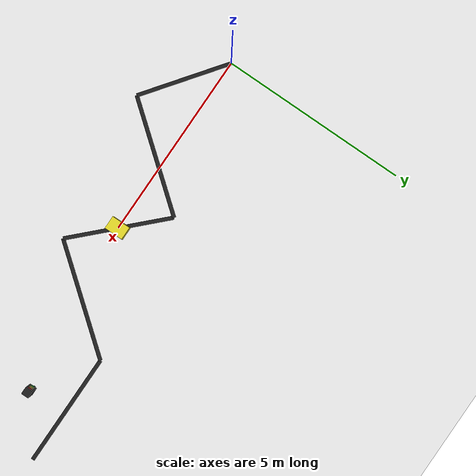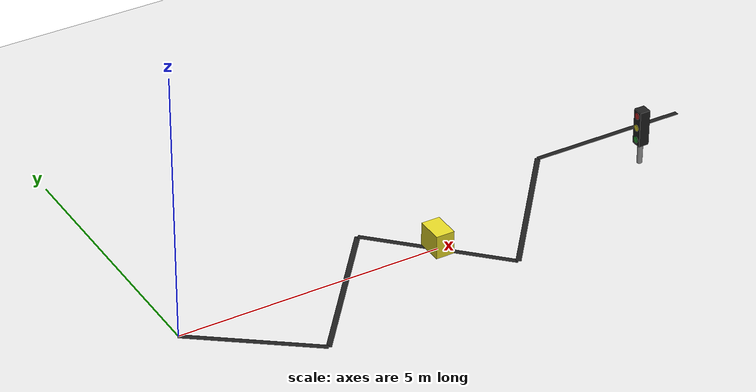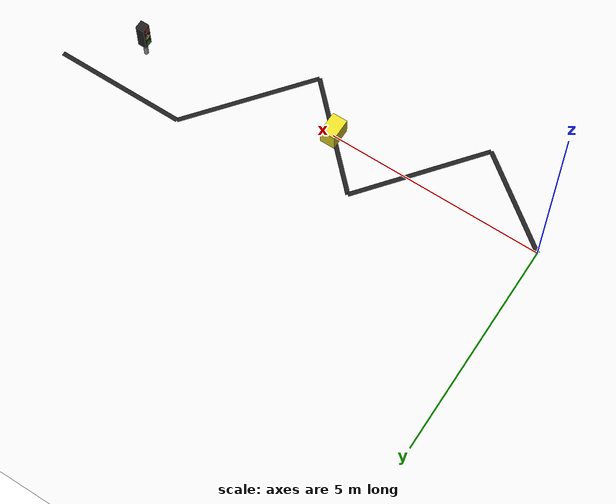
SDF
<sdf version="1.6">
 <world name="zigzag">
  <plugin name="gazebo_ros_state" filename="libgazebo_ros_state.so"/>
  <light type="directional" name="sun">
   <pose>0 0 10 0 0 0</pose>
   <diffuse>0.75 0.50 0.30 1</diffuse>
   <specular>0.15 0.10 0.05 1</specular>
   <attenuation>
    <range>1000</range>
    <constant>0.9</constant>
    <linear>0.01</linear>
    <quadratic>0.001</quadratic>
   </attenuation>
   <direction>-0.8 0.0 -0.4</direction>
  </light>
  <model name="ground_plane">
   <static>true</static>
   <link name="link">
    <collision name="collision">
     <geometry><plane><normal>0 0 1</normal><size>100 100</size></plane></geometry>
     <surface><friction><ode><mu>100</mu><mu2>50</mu2></ode></friction></surface>
    </collision>
    <visual name="visual">
     <cast_shadows>false</cast_shadows>
     <geometry><plane><normal>0 0 1</normal><size>100 100</size></plane></geometry>
     <material>
      <script><uri>file://media/materials/scripts/gazebo.material</uri><name>Gazebo/White</name></script>
     </material>
    </visual>
   </link>
  </model>
  <model name="lane_0">
   <static>true</static>
   <link name="link">
    <visual name="visual">
     <geometry><box><size>2.5000 0.1000 0.001</size></box></geometry>
     <material>
      <script><uri>file://media/materials/scripts/gazebo.material</uri><name>Gazebo/Black</name></script>
     </material>
    </visual>
   </link>
   <pose>1.0000 -0.7500 0.0005 0 0 -0.6435</pose>
  </model>
  <model name="lane_1">
   <static>true</static>
   <link name="link">
    <visual name="visual">
     <geometry><box><size>3.2016 0.1000 0.001</size></box></geometry>
     <material>
      <script><uri>file://media/materials/scripts/gazebo.material</uri><name>Gazebo/Black</name></script>
     </material>
    </visual>
   </link>
   <pose>3.0000 -0.2500 0.0005 0 0 0.8961</pose>
  </model>
  <model name="lane_2">
   <static>true</static>
   <link name="link">
    <visual name="visual">
     <geometry><box><size>2.8284 0.1000 0.001</size></box></geometry>
     <material>
      <script><uri>file://media/materials/scripts/gazebo.material</uri><name>Gazebo/Black</name></script>
     </material>
    </visual>
   </link>
   <pose>5.0000 0.0000 0.0005 0 0 -0.7854</pose>
  </model>
  <model name="lane_3">
   <static>true</static>
   <link name="link">
    <visual name="visual">
     <geometry><box><size>3.2016 0.1000 0.001</size></box></geometry>
     <material>
      <script><uri>file://media/materials/scripts/gazebo.material</uri><name>Gazebo/Black</name></script>
     </material>
    </visual>
   </link>
   <pose>7.0000 0.2500 0.0005 0 0 0.8961</pose>
  </model>
  <model name="lane_4">
   <static>true</static>
   <link name="link">
    <visual name="visual">
     <geometry><box><size>3.0000 0.1000 0.001</size></box></geometry>
     <material>
      <script><uri>file://media/materials/scripts/gazebo.material</uri><name>Gazebo/Black</name></script>
     </material>
    </visual>
   </link>
   <pose>9.5000 1.5000 0.0005 0 0 0.0000</pose>
  </model>
  <model name="traffic_light">
   <static>true</static>
   <link name="pole">
    <collision name="collision">
     <geometry><cylinder><radius>0.05</radius><length>0.400</length></cylinder></geometry>
    </collision>
    <visual name="visual">
     <geometry><cylinder><radius>0.05</radius><length>0.400</length></cylinder></geometry>
     <material>
      <script><uri>file://media/materials/scripts/gazebo.material</uri><name>Gazebo/Grey</name></script>
     </material>
    </visual>
    <pose>0 0 0.2000 0 0 0</pose>
   </link>
   <link name="head">
    <collision name="collision"><geometry><box><size>0.200 0.200 0.700</size></box></geometry></collision>
    <visual name="visual">
     <geometry><box><size>0.200 0.200 0.700</size></box></geometry>
     <material>
      <script><uri>file://media/materials/scripts/gazebo.material</uri><name>Gazebo/Black</name></script>
     </material>
    </visual>
    <pose>0 0 0.7500 0 0 0</pose>
   </link>
   <link name="red_light">
    <visual name="visual">
     <geometry><cylinder><radius>0.060</radius><length>0.02</length></cylinder></geometry>
     <material>
      <script><uri>file://media/materials/scripts/gazebo.material</uri><name>Gazebo/Red</name></script>
     </material>
    </visual>
    <pose>0 0.1010 0.9950 1.5708 0 0</pose>
   </link>
   <link name="yellow_light">
    <visual name="visual">
     <geometry><cylinder><radius>0.060</radius><length>0.02</length></cylinder></geometry>
     <material>
      <script><uri>file://media/materials/scripts/gazebo.material</uri><name>Gazebo/Yellow</name></script>
     </material>
    </visual>
    <pose>0 0.1010 0.7500 1.5708 0 0</pose>
   </link>
   <link name="green_light">
    <visual name="visual">
     <geometry><cylinder><radius>0.060</radius><length>0.02</length></cylinder></geometry>
     <material>
      <script><uri>file://media/materials/scripts/gazebo.material</uri><name>Gazebo/Green</name></script>
     </material>
    </visual>
    <pose>0 0.1010 0.5050 1.5708 0 0</pose>
   </link>
   <pose>9.5000 0.5000 0.0 0 0 1.5708</pose>
  </model>
  <model name="obstacle_box">
   <static>true</static>
   <link name="link">
    <collision name="collision"><geometry><box><size>0.350 0.500 0.450</size></box></geometry></collision>
    <visual name="visual">
     <geometry><box><size>0.350 0.500 0.450</size></box></geometry>
     <material>
      <script><uri>file://media/materials/scripts/gazebo.material</uri><name>Gazebo/Yellow</name></script>
     </material>
    </visual>
   </link>
   <pose>5.0000 0.0000 0.2250 0 0 0</pose>
  </model>
 </world>
</sdf>
